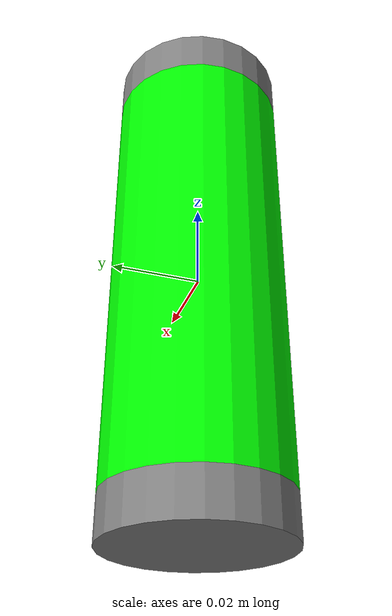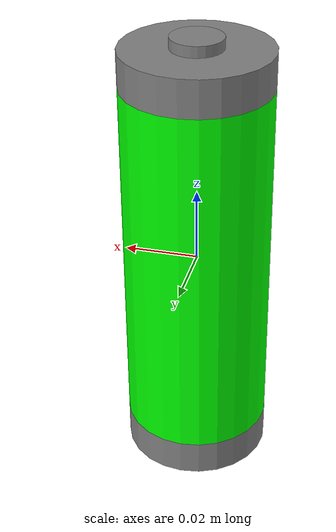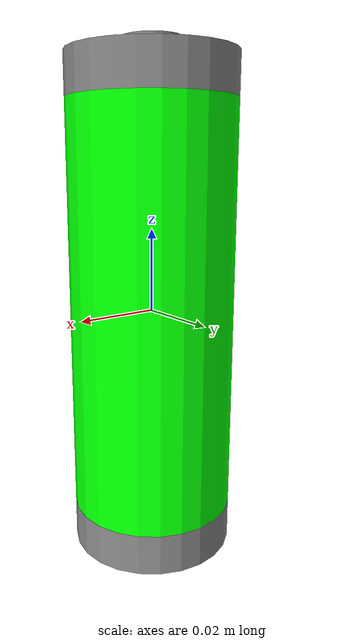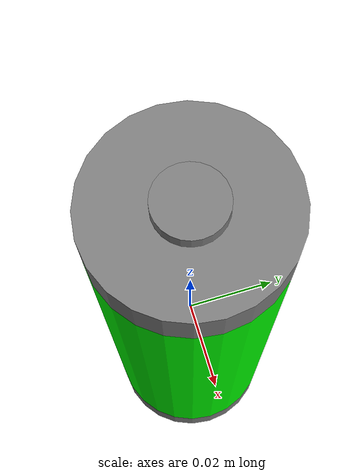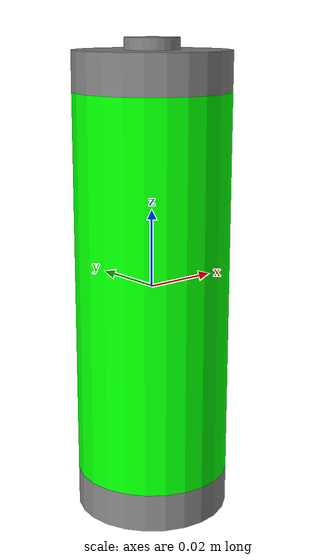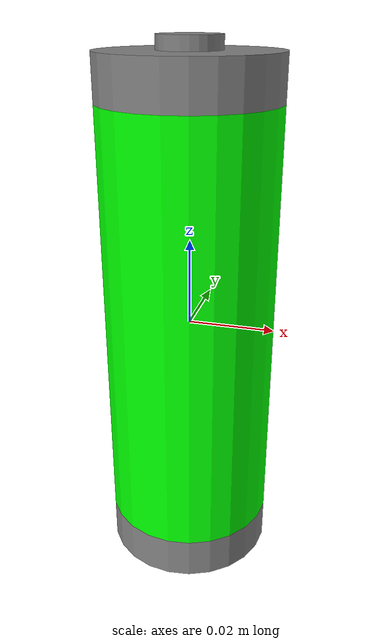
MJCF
<mujoco model="battery_3">
    <worldbody>
        <body name="battery" pos="0 0 0">
            <!-- Main green body -->
            <geom name="battery_body" type="cylinder" pos="0 0 0" size="0.02 0.05" rgba="0 1 0 1" condim="4"/>

            <!-- Bottom grey cap -->
            <geom name="battery_bottom_cap" type="cylinder" pos="0 0 -0.055" size="0.02 0.005" rgba="0.5 0.5 0.5 1" condim="4"/>

            <!-- Top grey cap -->
            <geom name="battery_top_cap" type="cylinder" pos="0 0 0.055" size="0.02 0.005" rgba="0.5 0.5 0.5 1" condim="4"/>

            <!-- Positive bump on top -->
            <geom name="battery_positive_bump" type="cylinder" pos="0 0 0.06" size="0.007 0.003" rgba="0.5 0.5 0.5 1" condim="4"/>

            <!-- Make it one solid object -->
            <joint name="battery_joint" type="free"/>
        </body>
    </worldbody>
</mujoco>
